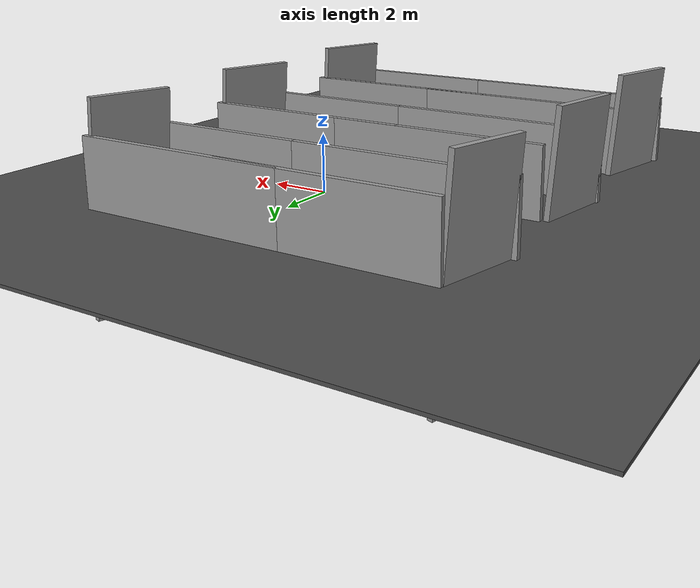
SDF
<sdf version="1.6">
 <world name="default">
  <light name="sun" type="directional">
   <pose>0 0 10 0 -0 0</pose>
   <diffuse>0.8 0.8 0.8 1</diffuse>
   <specular>0.2 0.2 0.2 1</specular>
   <attenuation>
    <range>1000</range>
    <constant>0.9</constant>
    <linear>0.01</linear>
    <quadratic>0.001</quadratic>
   </attenuation>
   <direction>-0.5 0.1 -0.9</direction>
  </light>
  <model name="ground_plane">
   <static>1</static>
   <link name="link">
    <collision name="collision">
     <geometry><plane><normal>0 0 1</normal><size>100 100</size></plane></geometry>
     <surface>
      <contact><collide_bitmask>65535</collide_bitmask></contact>
      <friction><ode><mu>100</mu><mu2>50</mu2></ode></friction>
     </surface>
    </collision>
    <visual name="visual">
     <cast_shadows>0</cast_shadows>
     <geometry><plane><normal>0 0 1</normal><size>100 100</size></plane></geometry>
     <material>
      <script><uri>file://media/materials/scripts/gazebo.material</uri><name>Gazebo/Grey</name></script>
     </material>
    </visual>
   </link>
  </model>
  <model name="asphalt_plane">
   <pose>-2.07175 -8.06053 0 0 -0 0</pose>
   <static>1</static>
   <link name="link">
    <collision name="collision"><geometry><box><size>200 200 0.1</size></box></geometry></collision>
    <visual name="visual">
     <cast_shadows>0</cast_shadows>
     <geometry><box><size>200 200 0.1</size></box></geometry>
     <material>
      <script>
       <uri>model://asphalt_plane/materials/scripts</uri>
       <uri>model://asphalt_plane/materials/textures</uri>
       <name>vrc/asphalt</name>
      </script>
     </material>
    </visual>
   </link>
  </model>
  <physics name="default_physics" default="0" type="ode">
   <ode>
    <solver>
     <type>quick</type>
     <iters>10</iters>
     <sor>1.3</sor>
     <use_dynamic_moi_rescaling>0</use_dynamic_moi_rescaling>
    </solver>
    <constraints>
     <cfm>0</cfm>
     <erp>0.2</erp>
     <contact_max_correcting_vel>100</contact_max_correcting_vel>
     <contact_surface_layer>0.001</contact_surface_layer>
    </constraints>
   </ode>
   <max_step_size>0.004</max_step_size>
   <real_time_factor>1</real_time_factor>
   <real_time_update_rate>250</real_time_update_rate>
  </physics>
  <model name="grey_wall2">
   <static>1</static>
   <link name="link">
    <pose>0 0 1.4 0 -0 0</pose>
    <collision name="collision"><geometry><box><size>7.5 0.2 2.8</size></box></geometry></collision>
    <visual name="visual">
     <cast_shadows>0</cast_shadows>
     <geometry><box><size>7.5 0.2 2.8</size></box></geometry>
     <material>
      <script>
       <uri>model://grey_wall/materials/scripts</uri>
       <uri>model://grey_wall/materials/textures</uri>
       <name>vrc/grey_wall</name>
      </script>
     </material>
    </visual>
   </link>
   <pose>1.41255 5.4292 2.43115 3.14007 -0 0</pose>
  </model>
  <gravity>0 0 -9.8066</gravity>
  <magnetic_field>6e-06 2.3e-05 -4.2e-05</magnetic_field>
  <atmosphere type="adiabatic"/>
  <scene><ambient>0.4 0.4 0.4 1</ambient><background>0.7 0.7 0.7 1</background><shadows>1</shadows></scene>
  <spherical_coordinates>
   <surface_model>EARTH_WGS84</surface_model>
   <latitude_deg>0</latitude_deg>
   <longitude_deg>0</longitude_deg>
   <elevation>0</elevation>
   <heading_deg>0</heading_deg>
  </spherical_coordinates>
  <model name="grey_wall_0">
   <static>1</static>
   <link name="link">
    <pose>0 0 1.4 0 -0 0</pose>
    <collision name="collision"><geometry><box><size>7.5 0.2 2.8</size></box></geometry></collision>
    <visual name="visual">
     <cast_shadows>0</cast_shadows>
     <geometry><box><size>7.5 0.2 2.8</size></box></geometry>
     <material>
      <script>
       <uri>model://grey_wall/materials/scripts</uri>
       <uri>model://grey_wall/materials/textures</uri>
       <name>vrc/grey_wall</name>
      </script>
     </material>
    </visual>
   </link>
   <pose>-3.72139 5.4292 2.43115 3.14007 -0 0</pose>
  </model>
  <model name="grey_wall_1">
   <static>1</static>
   <link name="link">
    <pose>0 0 1.4 0 -0 0</pose>
    <collision name="collision"><geometry><box><size>7.5 0.2 2.8</size></box></geometry></collision>
    <visual name="visual">
     <cast_shadows>0</cast_shadows>
     <geometry><box><size>7.5 0.2 2.8</size></box></geometry>
     <material>
      <script>
       <uri>model://grey_wall/materials/scripts</uri>
       <uri>model://grey_wall/materials/textures</uri>
       <name>vrc/grey_wall</name>
      </script>
     </material>
    </visual>
   </link>
   <pose>-3.72121 -0.770803 2.43139 3.14007 0.000193 -0</pose>
  </model>
  <model name="grey_wall_2">
   <static>1</static>
   <link name="link">
    <pose>0 0 1.4 0 -0 0</pose>
    <collision name="collision"><geometry><box><size>7.5 0.2 2.8</size></box></geometry></collision>
    <visual name="visual">
     <cast_shadows>0</cast_shadows>
     <geometry><box><size>7.5 0.2 2.8</size></box></geometry>
     <material>
      <script>
       <uri>model://grey_wall/materials/scripts</uri>
       <uri>model://grey_wall/materials/textures</uri>
       <name>vrc/grey_wall</name>
      </script>
     </material>
    </visual>
   </link>
   <pose>0.601334 2.64769 2.43065 -3.14007 -0.000386 0</pose>
  </model>
  <model name="grey_wall_3">
   <static>1</static>
   <link name="link">
    <pose>0 0 1.4 0 -0 0</pose>
    <collision name="collision"><geometry><box><size>7.5 0.2 2.8</size></box></geometry></collision>
    <visual name="visual">
     <cast_shadows>0</cast_shadows>
     <geometry><box><size>7.5 0.2 2.8</size></box></geometry>
     <material>
      <script>
       <uri>model://grey_wall/materials/scripts</uri>
       <uri>model://grey_wall/materials/textures</uri>
       <name>vrc/grey_wall</name>
      </script>
     </material>
    </visual>
   </link>
   <pose>1.41255 -7.0708 2.43115 3.14007 -0 0</pose>
  </model>
  <model name="grey_wall_4">
   <static>1</static>
   <link name="link">
    <pose>0 0 1.4 0 -0 0</pose>
    <collision name="collision"><geometry><box><size>7.5 0.2 2.8</size></box></geometry></collision>
    <visual name="visual">
     <cast_shadows>0</cast_shadows>
     <geometry><box><size>7.5 0.2 2.8</size></box></geometry>
     <material>
      <script>
       <uri>model://grey_wall/materials/scripts</uri>
       <uri>model://grey_wall/materials/textures</uri>
       <name>vrc/grey_wall</name>
      </script>
     </material>
    </visual>
   </link>
   <pose>-3.72139 -7.0708 2.43115 3.14007 -0 0</pose>
  </model>
  <model name="grey_wall_5">
   <static>1</static>
   <link name="link">
    <pose>0 0 1.4 0 -0 0</pose>
    <collision name="collision"><geometry><box><size>7.5 0.2 2.8</size></box></geometry></collision>
    <visual name="visual">
     <cast_shadows>0</cast_shadows>
     <geometry><box><size>7.5 0.2 2.8</size></box></geometry>
     <material>
      <script>
       <uri>model://grey_wall/materials/scripts</uri>
       <uri>model://grey_wall/materials/textures</uri>
       <name>vrc/grey_wall</name>
      </script>
     </material>
    </visual>
   </link>
   <pose>1.41273 -0.770803 2.43139 3.14007 0.000193 -0</pose>
  </model>
  <model name="grey_wall_6">
   <static>1</static>
   <link name="link">
    <pose>0 0 1.4 0 -0 0</pose>
    <collision name="collision"><geometry><box><size>7.5 0.2 2.8</size></box></geometry></collision>
    <visual name="visual">
     <cast_shadows>0</cast_shadows>
     <geometry><box><size>7.5 0.2 2.8</size></box></geometry>
     <material>
      <script>
       <uri>model://grey_wall/materials/scripts</uri>
       <uri>model://grey_wall/materials/textures</uri>
       <name>vrc/grey_wall</name>
      </script>
     </material>
    </visual>
   </link>
   <pose>-4.53261 2.64769 2.43065 -3.14007 -0.000386 0</pose>
  </model>
  <model name="grey_wall_8">
   <static>1</static>
   <link name="link">
    <pose>0 0 1.4 0 -0 0</pose>
    <collision name="collision"><geometry><box><size>7.5 0.2 2.8</size></box></geometry></collision>
    <visual name="visual">
     <cast_shadows>0</cast_shadows>
     <geometry><box><size>7.5 0.2 2.8</size></box></geometry>
     <material>
      <script>
       <uri>model://grey_wall/materials/scripts</uri>
       <uri>model://grey_wall/materials/textures</uri>
       <name>vrc/grey_wall</name>
      </script>
     </material>
    </visual>
   </link>
   <pose>-4.53261 -3.55231 2.43065 -3.14007 -0.000387 0</pose>
  </model>
  <model name="grey_wall_9">
   <static>1</static>
   <link name="link">
    <pose>0 0 1.4 0 -0 0</pose>
    <collision name="collision"><geometry><box><size>7.5 0.2 2.8</size></box></geometry></collision>
    <visual name="visual">
     <cast_shadows>0</cast_shadows>
     <geometry><box><size>7.5 0.2 2.8</size></box></geometry>
     <material>
      <script>
       <uri>model://grey_wall/materials/scripts</uri>
       <uri>model://grey_wall/materials/textures</uri>
       <name>vrc/grey_wall</name>
      </script>
     </material>
    </visual>
   </link>
   <pose>0.601334 -3.55231 2.43065 -3.14007 -0.000387 0</pose>
  </model>
  <model name="grey_wall_10">
   <static>1</static>
   <link name="link">
    <pose>0 0 1.4 0 -0 0</pose>
    <collision name="collision"><geometry><box><size>7.5 0.2 2.8</size></box></geometry></collision>
    <visual name="visual">
     <cast_shadows>0</cast_shadows>
     <geometry><box><size>7.5 0.2 2.8</size></box></geometry>
     <material>
      <script>
       <uri>model://grey_wall/materials/scripts</uri>
       <uri>model://grey_wall/materials/textures</uri>
       <name>vrc/grey_wall</name>
      </script>
     </material>
    </visual>
   </link>
   <pose>0.601212 -9.85231 2.43048 -3.14007 -0.000517 -0</pose>
  </model>
  <model name="grey_wall">
   <static>1</static>
   <link name="link">
    <pose>0 0 1.4 0 -0 0</pose>
    <collision name="collision"><geometry><box><size>7.5 0.2 2.8</size></box></geometry></collision>
    <visual name="visual">
     <cast_shadows>0</cast_shadows>
     <geometry><box><size>7.5 0.2 2.8</size></box></geometry>
     <material>
      <script>
       <uri>model://grey_wall/materials/scripts</uri>
       <uri>model://grey_wall/materials/textures</uri>
       <name>vrc/grey_wall</name>
      </script>
     </material>
    </visual>
   </link>
   <pose>-4.53273 -9.85231 2.43048 -3.14007 -0.000517 -0</pose>
  </model>
  <model name="grey_wall_clone">
   <static>1</static>
   <link name="link">
    <pose>0 0 1.4 0 -0 0</pose>
    <collision name="collision"><geometry><box><size>7.5 0.2 2.8</size></box></geometry></collision>
    <visual name="visual">
     <cast_shadows>0</cast_shadows>
     <geometry><box><size>7.5 0.2 2.8</size></box></geometry>
     <material>
      <script>
       <uri>model://grey_wall/materials/scripts</uri>
       <uri>model://grey_wall/materials/textures</uri>
       <name>vrc/grey_wall</name>
      </script>
     </material>
    </visual>
   </link>
   <pose>-7.38132 5.38416 -0.092474 1.79999 1.5 -7e-06</pose>
  </model>
  <model name="grey_wall_clone_0">
   <static>1</static>
   <link name="link">
    <pose>0 0 1.4 0 -0 0</pose>
    <collision name="collision"><geometry><box><size>7.5 0.2 2.8</size></box></geometry></collision>
    <visual name="visual">
     <cast_shadows>0</cast_shadows>
     <geometry><box><size>7.5 0.2 2.8</size></box></geometry>
     <material>
      <script>
       <uri>model://grey_wall/materials/scripts</uri>
       <uri>model://grey_wall/materials/textures</uri>
       <name>vrc/grey_wall</name>
      </script>
     </material>
    </visual>
   </link>
   <pose>-7.41144 -6.87525 -0.095493 1.79999 1.5 -7e-06</pose>
  </model>
  <model name="grey_wall_clone_1">
   <static>1</static>
   <link name="link">
    <pose>0 0 1.4 0 -0 0</pose>
    <collision name="collision"><geometry><box><size>7.5 0.2 2.8</size></box></geometry></collision>
    <visual name="visual">
     <cast_shadows>0</cast_shadows>
     <geometry><box><size>7.5 0.2 2.8</size></box></geometry>
     <material>
      <script>
       <uri>model://grey_wall/materials/scripts</uri>
       <uri>model://grey_wall/materials/textures</uri>
       <name>vrc/grey_wall</name>
      </script>
     </material>
    </visual>
   </link>
   <pose>5.06519 -7.05899 -0.095493 1.79999 1.5 -1.1e-05</pose>
  </model>
  <model name="grey_wall_clone_2">
   <static>1</static>
   <link name="link">
    <pose>0 0 1.4 0 -0 0</pose>
    <collision name="collision"><geometry><box><size>7.5 0.2 2.8</size></box></geometry></collision>
    <visual name="visual">
     <cast_shadows>0</cast_shadows>
     <geometry><box><size>7.5 0.2 2.8</size></box></geometry>
     <material>
      <script>
       <uri>model://grey_wall/materials/scripts</uri>
       <uri>model://grey_wall/materials/textures</uri>
       <name>vrc/grey_wall</name>
      </script>
     </material>
    </visual>
   </link>
   <pose>5.10973 -0.783714 -0.095493 1.79999 1.5 -1.1e-05</pose>
  </model>
  <model name="grey_wall_clone_3">
   <static>1</static>
   <link name="link">
    <pose>0 0 1.4 0 -0 0</pose>
    <collision name="collision"><geometry><box><size>7.5 0.2 2.8</size></box></geometry></collision>
    <visual name="visual">
     <cast_shadows>0</cast_shadows>
     <geometry><box><size>7.5 0.2 2.8</size></box></geometry>
     <material>
      <script>
       <uri>model://grey_wall/materials/scripts</uri>
       <uri>model://grey_wall/materials/textures</uri>
       <name>vrc/grey_wall</name>
      </script>
     </material>
    </visual>
   </link>
   <pose>5.08953 5.42325 -0.095493 1.79999 1.5 -1.1e-05</pose>
  </model>
  <model name="grey_wall_clone_clone">
   <static>1</static>
   <link name="link">
    <pose>0 0 1.4 0 -0 0</pose>
    <collision name="collision"><geometry><box><size>7.5 0.2 2.8</size></box></geometry></collision>
    <visual name="visual">
     <cast_shadows>0</cast_shadows>
     <geometry><box><size>7.5 0.2 2.8</size></box></geometry>
     <material>
      <script>
       <uri>model://grey_wall/materials/scripts</uri>
       <uri>model://grey_wall/materials/textures</uri>
       <name>vrc/grey_wall</name>
      </script>
     </material>
    </visual>
   </link>
   <pose>-7.61821 -0.801941 -0.095493 1.74999 1.5 -7e-06</pose>
  </model>
 </world>
</sdf>
